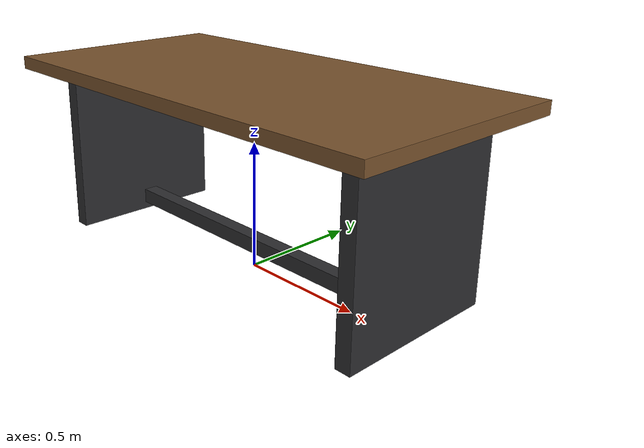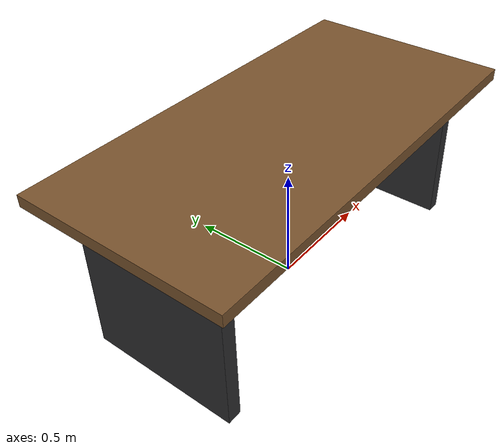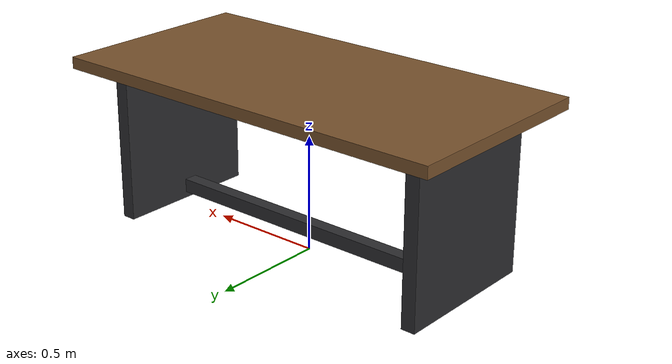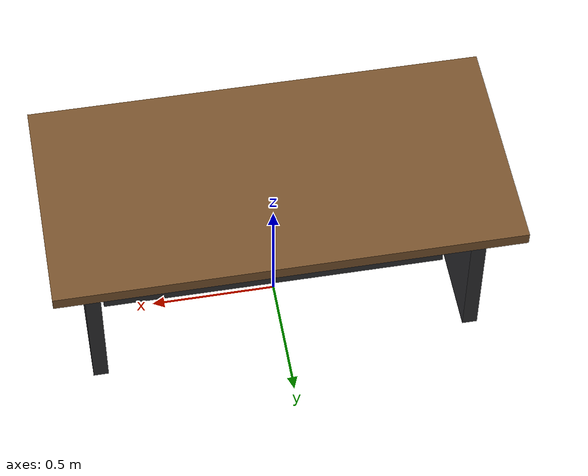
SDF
<?xml version="1.0" ?>
<sdf version="1.6">
  <model name="dining_table_6">
    <static>true</static>

    <link name="table_link">
      <!-- ===== R5 COLLISIONS ===== -->
      <collision name="top_col">
        <pose>0 0 0.73 0 0 0</pose>
        <geometry><box><size>1.8 0.9 0.05</size></box></geometry>
      </collision>
      <collision name="leg_left_col">
        <pose>-0.75 0 0.36 0 0 0</pose>
        <geometry><box><size>0.08 0.7 0.72</size></box></geometry>
      </collision>
      <collision name="leg_right_col">
        <pose>0.75 0 0.36 0 0 0</pose>
        <geometry><box><size>0.08 0.7 0.72</size></box></geometry>
        <surface><friction><ode><mu>0.6</mu><mu2>0.6</mu2></ode></friction></surface>
      </collision>

      <!-- ===== VISUALS ===== -->
      <visual name="top_vis">
        <pose>0 0 0.73 0 0 0</pose>
        <geometry><box><size>1.8 0.9 0.05</size></box></geometry>
        <material>
          <ambient>0.32 0.22 0.12 1</ambient>
          <diffuse>0.48 0.33 0.18 1</diffuse>
          <specular>0.22 0.16 0.11 1</specular>
        </material>
      </visual>
      <visual name="leg_left_vis">
        <pose>-0.75 0 0.38 0 0 0</pose>
        <geometry><box><size>0.06 0.65 0.70</size></box></geometry>
        <material><ambient>0.12 0.12 0.13 1</ambient><diffuse>0.18 0.18 0.19 1</diffuse><specular>0.35 0.35 0.37 1</specular></material>
      </visual>
      <visual name="leg_right_vis">
        <pose>0.75 0 0.38 0 0 0</pose>
        <geometry><box><size>0.06 0.65 0.70</size></box></geometry>
        <material><ambient>0.12 0.12 0.13 1</ambient><diffuse>0.18 0.18 0.19 1</diffuse><specular>0.35 0.35 0.37 1</specular></material>
      </visual>
      <!-- Stretcher bar between legs -->
      <visual name="stretcher_vis">
        <pose>0 0 0.10 0 0 0</pose>
        <geometry><box><size>1.4 0.06 0.06</size></box></geometry>
        <material><ambient>0.12 0.12 0.13 1</ambient><diffuse>0.18 0.18 0.19 1</diffuse><specular>0.35 0.35 0.37 1</specular></material>
      </visual>
    </link>
  </model>
</sdf>
